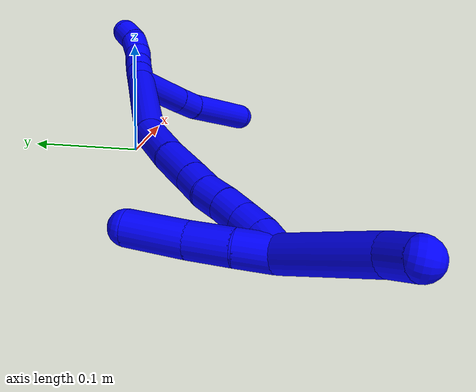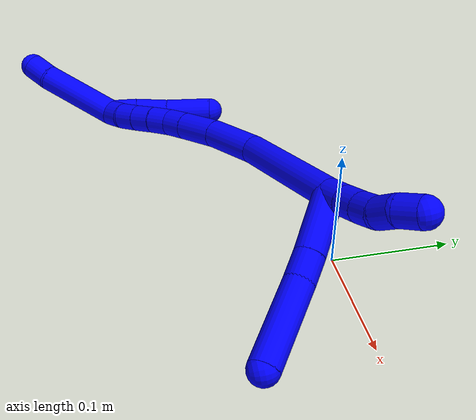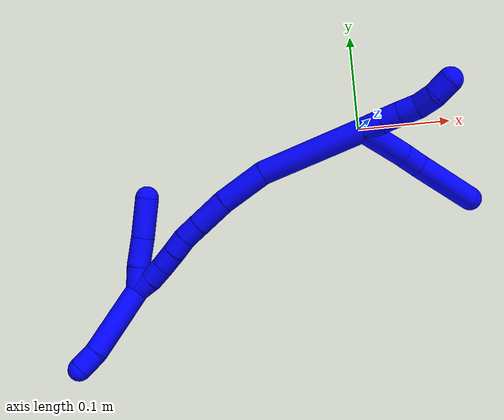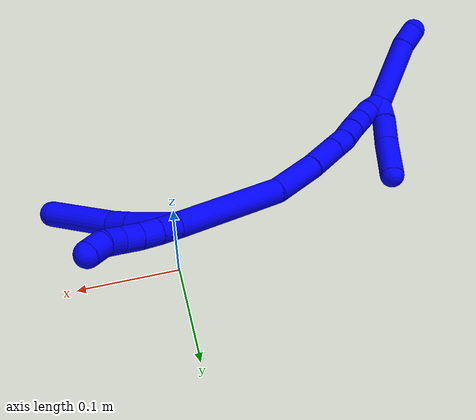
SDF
<sdf version="1.7">
 <world name="default">
  <model name="1">
   <static>0</static>
   <link name="1">
    <collision name="collision-cylinder-e_1_2_8">
     <pose>0.018485 -0.013799 0.01391 0.781372 0.756296 0.32436</pose>
     <geometry><cylinder><radius>0.0125</radius><length>0.053873</length></cylinder></geometry>
     <surface>
      <friction><ode><mu>1.16</mu><mu2>1.16</mu2><slip1>0</slip1><slip2>0</slip2></ode></friction>
      <contact><ode><kp>1e+06</kp><kd>1</kd><max_vel>0</max_vel><min_depth>0.001</min_depth></ode></contact>
     </surface>
    </collision>
    <visual name="visual-cylinder-e_1_2_8">
     <pose>0.018485 -0.013799 0.01391 0.781372 0.756296 0.32436</pose>
     <geometry><cylinder><radius>0.0125</radius><length>0.053873</length></cylinder></geometry>
     <material><ambient>0 0 1 1</ambient></material>
    </visual>
    <collision name="collision-cylinder-e_2_8_9">
     <pose>0.044879 -0.033379 0.034361 0.723861 0.736111 0.289955</pose>
     <geometry><cylinder><radius>0.0125</radius><length>0.023559</length></cylinder></geometry>
     <surface>
      <friction><ode><mu>1.16</mu><mu2>1.16</mu2><slip1>0</slip1><slip2>0</slip2></ode></friction>
      <contact><ode><kp>1e+06</kp><kd>1</kd><max_vel>0</max_vel><min_depth>0.001</min_depth></ode></contact>
     </surface>
    </collision>
    <visual name="visual-cylinder-e_2_8_9">
     <pose>0.044879 -0.033379 0.034361 0.723861 0.736111 0.289955</pose>
     <geometry><cylinder><radius>0.0125</radius><length>0.023559</length></cylinder></geometry>
     <material><ambient>0 0 1 1</ambient></material>
    </visual>
    <collision name="collision-cylinder-e_3_9_6">
     <pose>0.079772 -0.052645 0.061064 0.589487 0.838581 0.268996</pose>
     <geometry><cylinder><radius>0.0125</radius><length>0.072567</length></cylinder></geometry>
     <surface>
      <friction><ode><mu>1.16</mu><mu2>1.16</mu2><slip1>0</slip1><slip2>0</slip2></ode></friction>
      <contact><ode><kp>1e+06</kp><kd>1</kd><max_vel>0</max_vel><min_depth>0.001</min_depth></ode></contact>
     </surface>
    </collision>
    <visual name="visual-cylinder-e_3_9_6">
     <pose>0.079772 -0.052645 0.061064 0.589487 0.838581 0.268996</pose>
     <geometry><cylinder><radius>0.0125</radius><length>0.072567</length></cylinder></geometry>
     <material><ambient>0 0 1 1</ambient></material>
    </visual>
    <collision name="collision-cylinder-e_1_2_10">
     <pose>0.009206 0.000197 -0.0039 -3.09104 1.16958 -3.06525</pose>
     <geometry><cylinder><radius>0.0125</radius><length>0.02</length></cylinder></geometry>
     <surface>
      <friction><ode><mu>1.16</mu><mu2>1.16</mu2><slip1>0</slip1><slip2>0</slip2></ode></friction>
      <contact><ode><kp>1e+06</kp><kd>1</kd><max_vel>0</max_vel><min_depth>0.001</min_depth></ode></contact>
     </surface>
    </collision>
    <visual name="visual-cylinder-e_1_2_10">
     <pose>0.009206 0.000197 -0.0039 -3.09104 1.16958 -3.06525</pose>
     <geometry><cylinder><radius>0.0125</radius><length>0.02</length></cylinder></geometry>
     <material><ambient>0 0 1 1</ambient></material>
    </visual>
    <collision name="collision-cylinder-e_2_10_11">
     <pose>0.027685 0.00101 -0.011491 -2.97646 1.18733 -2.89757</pose>
     <geometry><cylinder><radius>0.0125</radius><length>0.02</length></cylinder></geometry>
     <surface>
      <friction><ode><mu>1.16</mu><mu2>1.16</mu2><slip1>0</slip1><slip2>0</slip2></ode></friction>
      <contact><ode><kp>1e+06</kp><kd>1</kd><max_vel>0</max_vel><min_depth>0.001</min_depth></ode></contact>
     </surface>
    </collision>
    <visual name="visual-cylinder-e_2_10_11">
     <pose>0.027685 0.00101 -0.011491 -2.97646 1.18733 -2.89757</pose>
     <geometry><cylinder><radius>0.0125</radius><length>0.02</length></cylinder></geometry>
     <material><ambient>0 0 1 1</ambient></material>
    </visual>
    <collision name="collision-cylinder-e_3_11_12">
     <pose>0.046242 0.003006 -0.018635 -2.7611 1.18968 -2.587</pose>
     <geometry><cylinder><radius>0.0125</radius><length>0.02</length></cylinder></geometry>
     <surface>
      <friction><ode><mu>1.16</mu><mu2>1.16</mu2><slip1>0</slip1><slip2>0</slip2></ode></friction>
      <contact><ode><kp>1e+06</kp><kd>1</kd><max_vel>0</max_vel><min_depth>0.001</min_depth></ode></contact>
     </surface>
    </collision>
    <visual name="visual-cylinder-e_3_11_12">
     <pose>0.046242 0.003006 -0.018635 -2.7611 1.18968 -2.587</pose>
     <geometry><cylinder><radius>0.0125</radius><length>0.02</length></cylinder></geometry>
     <material><ambient>0 0 1 1</ambient></material>
    </visual>
    <collision name="collision-cylinder-e_4_12_13">
     <pose>0.063337 0.00793 -0.027228 -2.53812 0.896667 -1.99297</pose>
     <geometry><cylinder><radius>0.0125</radius><length>0.02</length></cylinder></geometry>
     <surface>
      <friction><ode><mu>1.16</mu><mu2>1.16</mu2><slip1>0</slip1><slip2>0</slip2></ode></friction>
      <contact><ode><kp>1e+06</kp><kd>1</kd><max_vel>0</max_vel><min_depth>0.001</min_depth></ode></contact>
     </surface>
    </collision>
    <visual name="visual-cylinder-e_4_12_13">
     <pose>0.063337 0.00793 -0.027228 -2.53812 0.896667 -1.99297</pose>
     <geometry><cylinder><radius>0.0125</radius><length>0.02</length></cylinder></geometry>
     <material><ambient>0 0 1 1</ambient></material>
    </visual>
    <collision name="collision-cylinder-e_5_13_5">
     <pose>0.078208 0.01241 -0.039389 -3.00883 0.783671 -2.82256</pose>
     <geometry><cylinder><radius>0.0125</radius><length>0.02</length></cylinder></geometry>
     <surface>
      <friction><ode><mu>1.16</mu><mu2>1.16</mu2><slip1>0</slip1><slip2>0</slip2></ode></friction>
      <contact><ode><kp>1e+06</kp><kd>1</kd><max_vel>0</max_vel><min_depth>0.001</min_depth></ode></contact>
     </surface>
    </collision>
    <visual name="visual-cylinder-e_5_13_5">
     <pose>0.078208 0.01241 -0.039389 -3.00883 0.783671 -2.82256</pose>
     <geometry><cylinder><radius>0.0125</radius><length>0.02</length></cylinder></geometry>
     <material><ambient>0 0 1 1</ambient></material>
    </visual>
    <collision name="collision-cylinder-e_1_2_14">
     <pose>-0.051818 0.003019 0.020473 -0.146401 -1.19083 0.099272</pose>
     <geometry><cylinder><radius>0.0125</radius><length>0.111596</length></cylinder></geometry>
     <surface>
      <friction><ode><mu>1.16</mu><mu2>1.16</mu2><slip1>0</slip1><slip2>0</slip2></ode></friction>
      <contact><ode><kp>1e+06</kp><kd>1</kd><max_vel>0</max_vel><min_depth>0.001</min_depth></ode></contact>
     </surface>
    </collision>
    <visual name="visual-cylinder-e_1_2_14">
     <pose>-0.051818 0.003019 0.020473 -0.146401 -1.19083 0.099272</pose>
     <geometry><cylinder><radius>0.0125</radius><length>0.111596</length></cylinder></geometry>
     <material><ambient>0 0 1 1</ambient></material>
    </visual>
    <collision name="collision-cylinder-e_2_14_15">
     <pose>-0.124346 0.009299 0.05522 -0.224621 -0.955402 0.116644</pose>
     <geometry><cylinder><radius>0.0125</radius><length>0.050725</length></cylinder></geometry>
     <surface>
      <friction><ode><mu>1.16</mu><mu2>1.16</mu2><slip1>0</slip1><slip2>0</slip2></ode></friction>
      <contact><ode><kp>1e+06</kp><kd>1</kd><max_vel>0</max_vel><min_depth>0.001</min_depth></ode></contact>
     </surface>
    </collision>
    <visual name="visual-cylinder-e_2_14_15">
     <pose>-0.124346 0.009299 0.05522 -0.224621 -0.955402 0.116644</pose>
     <geometry><cylinder><radius>0.0125</radius><length>0.050725</length></cylinder></geometry>
     <material><ambient>0 0 1 1</ambient></material>
    </visual>
    <collision name="collision-cylinder-e_3_15_16">
     <pose>-0.158835 0.014181 0.081471 -0.134545 -0.85074 0.061026</pose>
     <geometry><cylinder><radius>0.0125</radius><length>0.036657</length></cylinder></geometry>
     <surface>
      <friction><ode><mu>1.16</mu><mu2>1.16</mu2><slip1>0</slip1><slip2>0</slip2></ode></friction>
      <contact><ode><kp>1e+06</kp><kd>1</kd><max_vel>0</max_vel><min_depth>0.001</min_depth></ode></contact>
     </surface>
    </collision>
    <visual name="visual-cylinder-e_3_15_16">
     <pose>-0.158835 0.014181 0.081471 -0.134545 -0.85074 0.061026</pose>
     <geometry><cylinder><radius>0.0125</radius><length>0.036657</length></cylinder></geometry>
     <material><ambient>0 0 1 1</ambient></material>
    </visual>
    <collision name="collision-cylinder-e_4_16_17">
     <pose>-0.18044 0.016496 0.100208 -0.102167 -0.855771 0.046627</pose>
     <geometry><cylinder><radius>0.0125</radius><length>0.020729</length></cylinder></geometry>
     <surface>
      <friction><ode><mu>1.16</mu><mu2>1.16</mu2><slip1>0</slip1><slip2>0</slip2></ode></friction>
      <contact><ode><kp>1e+06</kp><kd>1</kd><max_vel>0</max_vel><min_depth>0.001</min_depth></ode></contact>
     </surface>
    </collision>
    <visual name="visual-cylinder-e_4_16_17">
     <pose>-0.18044 0.016496 0.100208 -0.102167 -0.855771 0.046627</pose>
     <geometry><cylinder><radius>0.0125</radius><length>0.020729</length></cylinder></geometry>
     <material><ambient>0 0 1 1</ambient></material>
    </visual>
    <collision name="collision-cylinder-e_5_17_18">
     <pose>-0.194641 0.018095 0.114738 -0.116131 -0.683827 0.041371</pose>
     <geometry><cylinder><radius>0.0125</radius><length>0.020183</length></cylinder></geometry>
     <surface>
      <friction><ode><mu>1.16</mu><mu2>1.16</mu2><slip1>0</slip1><slip2>0</slip2></ode></friction>
      <contact><ode><kp>1e+06</kp><kd>1</kd><max_vel>0</max_vel><min_depth>0.001</min_depth></ode></contact>
     </surface>
    </collision>
    <visual name="visual-cylinder-e_5_17_18">
     <pose>-0.194641 0.018095 0.114738 -0.116131 -0.683827 0.041371</pose>
     <geometry><cylinder><radius>0.0125</radius><length>0.020183</length></cylinder></geometry>
     <material><ambient>0 0 1 1</ambient></material>
    </visual>
    <collision name="collision-cylinder-e_6_18_19">
     <pose>-0.207637 0.019317 0.129998 -0.042074 -0.723394 0.01592</pose>
     <geometry><cylinder><radius>0.0125</radius><length>0.020004</length></cylinder></geometry>
     <surface>
      <friction><ode><mu>1.16</mu><mu2>1.16</mu2><slip1>0</slip1><slip2>0</slip2></ode></friction>
      <contact><ode><kp>1e+06</kp><kd>1</kd><max_vel>0</max_vel><min_depth>0.001</min_depth></ode></contact>
     </surface>
    </collision>
    <visual name="visual-cylinder-e_6_18_19">
     <pose>-0.207637 0.019317 0.129998 -0.042074 -0.723394 0.01592</pose>
     <geometry><cylinder><radius>0.0125</radius><length>0.020004</length></cylinder></geometry>
     <material><ambient>0 0 1 1</ambient></material>
    </visual>
    <collision name="collision-cylinder-e_7_19_20">
     <pose>-0.221105 0.020081 0.144764 -0.061649 -0.754105 0.02442</pose>
     <geometry><cylinder><radius>0.0125</radius><length>0.020002</length></cylinder></geometry>
     <surface>
      <friction><ode><mu>1.16</mu><mu2>1.16</mu2><slip1>0</slip1><slip2>0</slip2></ode></friction>
      <contact><ode><kp>1e+06</kp><kd>1</kd><max_vel>0</max_vel><min_depth>0.001</min_depth></ode></contact>
     </surface>
    </collision>
    <visual name="visual-cylinder-e_7_19_20">
     <pose>-0.221105 0.020081 0.144764 -0.061649 -0.754105 0.02442</pose>
     <geometry><cylinder><radius>0.0125</radius><length>0.020002</length></cylinder></geometry>
     <material><ambient>0 0 1 1</ambient></material>
    </visual>
    <collision name="collision-cylinder-e_8_20_1">
     <pose>-0.23607 0.020949 0.157953 -0.070723 -0.940082 0.03594</pose>
     <geometry><cylinder><radius>0.0125</radius><length>0.020104</length></cylinder></geometry>
     <surface>
      <friction><ode><mu>1.16</mu><mu2>1.16</mu2><slip1>0</slip1><slip2>0</slip2></ode></friction>
      <contact><ode><kp>1e+06</kp><kd>1</kd><max_vel>0</max_vel><min_depth>0.001</min_depth></ode></contact>
     </surface>
    </collision>
    <visual name="visual-cylinder-e_8_20_1">
     <pose>-0.23607 0.020949 0.157953 -0.070723 -0.940082 0.03594</pose>
     <geometry><cylinder><radius>0.0125</radius><length>0.020104</length></cylinder></geometry>
     <material><ambient>0 0 1 1</ambient></material>
    </visual>
    <collision name="collision-cylinder-e_1_1_21">
     <pose>-0.243604 0.019496 0.1511 2.99598 0.045255 0.601758</pose>
     <geometry><cylinder><radius>0.0125</radius><length>0.025832</length></cylinder></geometry>
     <surface>
      <friction><ode><mu>1.16</mu><mu2>1.16</mu2><slip1>0</slip1><slip2>0</slip2></ode></friction>
      <contact><ode><kp>1e+06</kp><kd>1</kd><max_vel>0</max_vel><min_depth>0.001</min_depth></ode></contact>
     </surface>
    </collision>
    <visual name="visual-cylinder-e_1_1_21">
     <pose>-0.243604 0.019496 0.1511 2.99598 0.045255 0.601758</pose>
     <geometry><cylinder><radius>0.0125</radius><length>0.025832</length></cylinder></geometry>
     <material><ambient>0 0 1 1</ambient></material>
    </visual>
    <collision name="collision-cylinder-e_2_21_22">
     <pose>-0.240709 0.014442 0.123352 2.93229 0.1497 1.24008</pose>
     <geometry><cylinder><radius>0.0125</radius><length>0.030977</length></cylinder></geometry>
     <surface>
      <friction><ode><mu>1.16</mu><mu2>1.16</mu2><slip1>0</slip1><slip2>0</slip2></ode></friction>
      <contact><ode><kp>1e+06</kp><kd>1</kd><max_vel>0</max_vel><min_depth>0.001</min_depth></ode></contact>
     </surface>
    </collision>
    <visual name="visual-cylinder-e_2_21_22">
     <pose>-0.240709 0.014442 0.123352 2.93229 0.1497 1.24008</pose>
     <geometry><cylinder><radius>0.0125</radius><length>0.030977</length></cylinder></geometry>
     <material><ambient>0 0 1 1</ambient></material>
    </visual>
    <collision name="collision-cylinder-e_3_22_4">
     <pose>-0.235695 0.008159 0.087171 2.99634 0.125566 1.42521</pose>
     <geometry><cylinder><radius>0.0125</radius><length>0.043191</length></cylinder></geometry>
     <surface>
      <friction><ode><mu>1.16</mu><mu2>1.16</mu2><slip1>0</slip1><slip2>0</slip2></ode></friction>
      <contact><ode><kp>1e+06</kp><kd>1</kd><max_vel>0</max_vel><min_depth>0.001</min_depth></ode></contact>
     </surface>
    </collision>
    <visual name="visual-cylinder-e_3_22_4">
     <pose>-0.235695 0.008159 0.087171 2.99634 0.125566 1.42521</pose>
     <geometry><cylinder><radius>0.0125</radius><length>0.043191</length></cylinder></geometry>
     <material><ambient>0 0 1 1</ambient></material>
    </visual>
    <collision name="collision-cylinder-e_1_1_23">
     <pose>-0.26126 0.041556 0.192076 -0.621126 -0.457339 0.149118</pose>
     <geometry><cylinder><radius>0.0125</radius><length>0.077325</length></cylinder></geometry>
     <surface>
      <friction><ode><mu>1.16</mu><mu2>1.16</mu2><slip1>0</slip1><slip2>0</slip2></ode></friction>
      <contact><ode><kp>1e+06</kp><kd>1</kd><max_vel>0</max_vel><min_depth>0.001</min_depth></ode></contact>
     </surface>
    </collision>
    <visual name="visual-cylinder-e_1_1_23">
     <pose>-0.26126 0.041556 0.192076 -0.621126 -0.457339 0.149118</pose>
     <geometry><cylinder><radius>0.0125</radius><length>0.077325</length></cylinder></geometry>
     <material><ambient>0 0 1 1</ambient></material>
    </visual>
    <collision name="collision-cylinder-e_2_23_3">
     <pose>-0.285119 0.067502 0.227308 -0.686869 -0.641793 0.236615</pose>
     <geometry><cylinder><radius>0.0125</radius><length>0.022675</length></cylinder></geometry>
     <surface>
      <friction><ode><mu>1.16</mu><mu2>1.16</mu2><slip1>0</slip1><slip2>0</slip2></ode></friction>
      <contact><ode><kp>1e+06</kp><kd>1</kd><max_vel>0</max_vel><min_depth>0.001</min_depth></ode></contact>
     </surface>
    </collision>
    <visual name="visual-cylinder-e_2_23_3">
     <pose>-0.285119 0.067502 0.227308 -0.686869 -0.641793 0.236615</pose>
     <geometry><cylinder><radius>0.0125</radius><length>0.022675</length></cylinder></geometry>
     <material><ambient>0 0 1 1</ambient></material>
    </visual>
    <collision name="collision-sphere-3">
     <pose>-0.291906 0.073261 0.23433 0 -0 0</pose>
     <geometry><sphere><radius>0.0125</radius></sphere></geometry>
     <surface>
      <friction><ode><mu>1.16</mu><mu2>1.16</mu2><slip1>0</slip1><slip2>0</slip2></ode></friction>
      <contact><ode><kp>1e+06</kp><kd>1</kd><max_vel>0</max_vel><min_depth>0.001</min_depth></ode></contact>
     </surface>
    </collision>
    <visual name="visual-sphere-3">
     <pose>-0.291906 0.073261 0.23433 0 -0 0</pose>
     <geometry><sphere><radius>0.0125</radius></sphere></geometry>
     <material><ambient>0 0 1 1</ambient></material>
    </visual>
    <collision name="collision-sphere-23">
     <pose>-0.278332 0.061743 0.220286 0 -0 0</pose>
     <geometry><sphere><radius>0.0125</radius></sphere></geometry>
     <surface>
      <friction><ode><mu>1.16</mu><mu2>1.16</mu2><slip1>0</slip1><slip2>0</slip2></ode></friction>
      <contact><ode><kp>1e+06</kp><kd>1</kd><max_vel>0</max_vel><min_depth>0.001</min_depth></ode></contact>
     </surface>
    </collision>
    <visual name="visual-sphere-23">
     <pose>-0.278332 0.061743 0.220286 0 -0 0</pose>
     <geometry><sphere><radius>0.0125</radius></sphere></geometry>
     <material><ambient>0 0 1 1</ambient></material>
    </visual>
    <collision name="collision-sphere-4">
     <pose>-0.23299 0.005057 0.065972 0 -0 0</pose>
     <geometry><sphere><radius>0.0125</radius></sphere></geometry>
     <surface>
      <friction><ode><mu>1.16</mu><mu2>1.16</mu2><slip1>0</slip1><slip2>0</slip2></ode></friction>
      <contact><ode><kp>1e+06</kp><kd>1</kd><max_vel>0</max_vel><min_depth>0.001</min_depth></ode></contact>
     </surface>
    </collision>
    <visual name="visual-sphere-4">
     <pose>-0.23299 0.005057 0.065972 0 -0 0</pose>
     <geometry><sphere><radius>0.0125</radius></sphere></geometry>
     <material><ambient>0 0 1 1</ambient></material>
    </visual>
    <collision name="collision-sphere-22">
     <pose>-0.238399 0.01126 0.108371 0 -0 0</pose>
     <geometry><sphere><radius>0.0125</radius></sphere></geometry>
     <surface>
      <friction><ode><mu>1.16</mu><mu2>1.16</mu2><slip1>0</slip1><slip2>0</slip2></ode></friction>
      <contact><ode><kp>1e+06</kp><kd>1</kd><max_vel>0</max_vel><min_depth>0.001</min_depth></ode></contact>
     </surface>
    </collision>
    <visual name="visual-sphere-22">
     <pose>-0.238399 0.01126 0.108371 0 -0 0</pose>
     <geometry><sphere><radius>0.0125</radius></sphere></geometry>
     <material><ambient>0 0 1 1</ambient></material>
    </visual>
    <collision name="collision-sphere-21">
     <pose>-0.243019 0.017624 0.138333 0 -0 0</pose>
     <geometry><sphere><radius>0.0125</radius></sphere></geometry>
     <surface>
      <friction><ode><mu>1.16</mu><mu2>1.16</mu2><slip1>0</slip1><slip2>0</slip2></ode></friction>
      <contact><ode><kp>1e+06</kp><kd>1</kd><max_vel>0</max_vel><min_depth>0.001</min_depth></ode></contact>
     </surface>
    </collision>
    <visual name="visual-sphere-21">
     <pose>-0.243019 0.017624 0.138333 0 -0 0</pose>
     <geometry><sphere><radius>0.0125</radius></sphere></geometry>
     <material><ambient>0 0 1 1</ambient></material>
    </visual>
    <collision name="collision-sphere-1">
     <pose>-0.244188 0.021368 0.163866 0 -0 0</pose>
     <geometry><sphere><radius>0.0125</radius></sphere></geometry>
     <surface>
      <friction><ode><mu>1.16</mu><mu2>1.16</mu2><slip1>0</slip1><slip2>0</slip2></ode></friction>
      <contact><ode><kp>1e+06</kp><kd>1</kd><max_vel>0</max_vel><min_depth>0.001</min_depth></ode></contact>
     </surface>
    </collision>
    <visual name="visual-sphere-1">
     <pose>-0.244188 0.021368 0.163866 0 -0 0</pose>
     <geometry><sphere><radius>0.0125</radius></sphere></geometry>
     <material><ambient>0 0 1 1</ambient></material>
    </visual>
    <collision name="collision-sphere-11">
     <pose>0.036959 0.001625 -0.015182 0 -0 0</pose>
     <geometry><sphere><radius>0.0125</radius></sphere></geometry>
     <surface>
      <friction><ode><mu>1.16</mu><mu2>1.16</mu2><slip1>0</slip1><slip2>0</slip2></ode></friction>
      <contact><ode><kp>1e+06</kp><kd>1</kd><max_vel>0</max_vel><min_depth>0.001</min_depth></ode></contact>
     </surface>
    </collision>
    <visual name="visual-sphere-11">
     <pose>0.036959 0.001625 -0.015182 0 -0 0</pose>
     <geometry><sphere><radius>0.0125</radius></sphere></geometry>
     <material><ambient>0 0 1 1</ambient></material>
    </visual>
    <collision name="collision-sphere-10">
     <pose>0.018412 0.000395 -0.007801 0 -0 0</pose>
     <geometry><sphere><radius>0.0125</radius></sphere></geometry>
     <surface>
      <friction><ode><mu>1.16</mu><mu2>1.16</mu2><slip1>0</slip1><slip2>0</slip2></ode></friction>
      <contact><ode><kp>1e+06</kp><kd>1</kd><max_vel>0</max_vel><min_depth>0.001</min_depth></ode></contact>
     </surface>
    </collision>
    <visual name="visual-sphere-10">
     <pose>0.018412 0.000395 -0.007801 0 -0 0</pose>
     <geometry><sphere><radius>0.0125</radius></sphere></geometry>
     <material><ambient>0 0 1 1</ambient></material>
    </visual>
    <collision name="collision-sphere-6">
     <pose>0.106756 -0.06613 0.081227 0 -0 0</pose>
     <geometry><sphere><radius>0.0125</radius></sphere></geometry>
     <surface>
      <friction><ode><mu>1.16</mu><mu2>1.16</mu2><slip1>0</slip1><slip2>0</slip2></ode></friction>
      <contact><ode><kp>1e+06</kp><kd>1</kd><max_vel>0</max_vel><min_depth>0.001</min_depth></ode></contact>
     </surface>
    </collision>
    <visual name="visual-sphere-6">
     <pose>0.106756 -0.06613 0.081227 0 -0 0</pose>
     <geometry><sphere><radius>0.0125</radius></sphere></geometry>
     <material><ambient>0 0 1 1</ambient></material>
    </visual>
    <collision name="collision-sphere-9">
     <pose>0.052788 -0.03916 0.040902 0 -0 0</pose>
     <geometry><sphere><radius>0.0125</radius></sphere></geometry>
     <surface>
      <friction><ode><mu>1.16</mu><mu2>1.16</mu2><slip1>0</slip1><slip2>0</slip2></ode></friction>
      <contact><ode><kp>1e+06</kp><kd>1</kd><max_vel>0</max_vel><min_depth>0.001</min_depth></ode></contact>
     </surface>
    </collision>
    <visual name="visual-sphere-9">
     <pose>0.052788 -0.03916 0.040902 0 -0 0</pose>
     <geometry><sphere><radius>0.0125</radius></sphere></geometry>
     <material><ambient>0 0 1 1</ambient></material>
    </visual>
    <collision name="collision-sphere-2">
     <geometry><sphere><radius>0.0125</radius></sphere></geometry>
     <surface>
      <friction><ode><mu>1.16</mu><mu2>1.16</mu2><slip1>0</slip1><slip2>0</slip2></ode></friction>
      <contact><ode><kp>1e+06</kp><kd>1</kd><max_vel>0</max_vel><min_depth>0.001</min_depth></ode></contact>
     </surface>
    </collision>
    <visual name="visual-sphere-2">
     <geometry><sphere><radius>0.0125</radius></sphere></geometry>
     <material><ambient>0 0 1 1</ambient></material>
    </visual>
    <collision name="collision-sphere-19">
     <pose>-0.214258 0.019632 0.137488 0 -0 0</pose>
     <geometry><sphere><radius>0.0125</radius></sphere></geometry>
     <surface>
      <friction><ode><mu>1.16</mu><mu2>1.16</mu2><slip1>0</slip1><slip2>0</slip2></ode></friction>
      <contact><ode><kp>1e+06</kp><kd>1</kd><max_vel>0</max_vel><min_depth>0.001</min_depth></ode></contact>
     </surface>
    </collision>
    <visual name="visual-sphere-19">
     <pose>-0.214258 0.019632 0.137488 0 -0 0</pose>
     <geometry><sphere><radius>0.0125</radius></sphere></geometry>
     <material><ambient>0 0 1 1</ambient></material>
    </visual>
    <collision name="collision-sphere-8">
     <pose>0.03697 -0.027597 0.02782 0 -0 0</pose>
     <geometry><sphere><radius>0.0125</radius></sphere></geometry>
     <surface>
      <friction><ode><mu>1.16</mu><mu2>1.16</mu2><slip1>0</slip1><slip2>0</slip2></ode></friction>
      <contact><ode><kp>1e+06</kp><kd>1</kd><max_vel>0</max_vel><min_depth>0.001</min_depth></ode></contact>
     </surface>
    </collision>
    <visual name="visual-sphere-8">
     <pose>0.03697 -0.027597 0.02782 0 -0 0</pose>
     <geometry><sphere><radius>0.0125</radius></sphere></geometry>
     <material><ambient>0 0 1 1</ambient></material>
    </visual>
    <collision name="collision-sphere-12">
     <pose>0.055524 0.004387 -0.022089 0 -0 0</pose>
     <geometry><sphere><radius>0.0125</radius></sphere></geometry>
     <surface>
      <friction><ode><mu>1.16</mu><mu2>1.16</mu2><slip1>0</slip1><slip2>0</slip2></ode></friction>
      <contact><ode><kp>1e+06</kp><kd>1</kd><max_vel>0</max_vel><min_depth>0.001</min_depth></ode></contact>
     </surface>
    </collision>
    <visual name="visual-sphere-12">
     <pose>0.055524 0.004387 -0.022089 0 -0 0</pose>
     <geometry><sphere><radius>0.0125</radius></sphere></geometry>
     <material><ambient>0 0 1 1</ambient></material>
    </visual>
    <collision name="collision-sphere-13">
     <pose>0.071149 0.011472 -0.032368 0 -0 0</pose>
     <geometry><sphere><radius>0.0125</radius></sphere></geometry>
     <surface>
      <friction><ode><mu>1.16</mu><mu2>1.16</mu2><slip1>0</slip1><slip2>0</slip2></ode></friction>
      <contact><ode><kp>1e+06</kp><kd>1</kd><max_vel>0</max_vel><min_depth>0.001</min_depth></ode></contact>
     </surface>
    </collision>
    <visual name="visual-sphere-13">
     <pose>0.071149 0.011472 -0.032368 0 -0 0</pose>
     <geometry><sphere><radius>0.0125</radius></sphere></geometry>
     <material><ambient>0 0 1 1</ambient></material>
    </visual>
    <collision name="collision-sphere-5">
     <pose>0.085267 0.013348 -0.04641 0 -0 0</pose>
     <geometry><sphere><radius>0.0125</radius></sphere></geometry>
     <surface>
      <friction><ode><mu>1.16</mu><mu2>1.16</mu2><slip1>0</slip1><slip2>0</slip2></ode></friction>
      <contact><ode><kp>1e+06</kp><kd>1</kd><max_vel>0</max_vel><min_depth>0.001</min_depth></ode></contact>
     </surface>
    </collision>
    <visual name="visual-sphere-5">
     <pose>0.085267 0.013348 -0.04641 0 -0 0</pose>
     <geometry><sphere><radius>0.0125</radius></sphere></geometry>
     <material><ambient>0 0 1 1</ambient></material>
    </visual>
    <collision name="collision-sphere-14">
     <pose>-0.103637 0.006038 0.040947 0 -0 0</pose>
     <geometry><sphere><radius>0.0125</radius></sphere></geometry>
     <surface>
      <friction><ode><mu>1.16</mu><mu2>1.16</mu2><slip1>0</slip1><slip2>0</slip2></ode></friction>
      <contact><ode><kp>1e+06</kp><kd>1</kd><max_vel>0</max_vel><min_depth>0.001</min_depth></ode></contact>
     </surface>
    </collision>
    <visual name="visual-sphere-14">
     <pose>-0.103637 0.006038 0.040947 0 -0 0</pose>
     <geometry><sphere><radius>0.0125</radius></sphere></geometry>
     <material><ambient>0 0 1 1</ambient></material>
    </visual>
    <collision name="collision-sphere-15">
     <pose>-0.145056 0.01256 0.069494 0 -0 0</pose>
     <geometry><sphere><radius>0.0125</radius></sphere></geometry>
     <surface>
      <friction><ode><mu>1.16</mu><mu2>1.16</mu2><slip1>0</slip1><slip2>0</slip2></ode></friction>
      <contact><ode><kp>1e+06</kp><kd>1</kd><max_vel>0</max_vel><min_depth>0.001</min_depth></ode></contact>
     </surface>
    </collision>
    <visual name="visual-sphere-15">
     <pose>-0.145056 0.01256 0.069494 0 -0 0</pose>
     <geometry><sphere><radius>0.0125</radius></sphere></geometry>
     <material><ambient>0 0 1 1</ambient></material>
    </visual>
    <collision name="collision-sphere-16">
     <pose>-0.172614 0.015803 0.093448 0 -0 0</pose>
     <geometry><sphere><radius>0.0125</radius></sphere></geometry>
     <surface>
      <friction><ode><mu>1.16</mu><mu2>1.16</mu2><slip1>0</slip1><slip2>0</slip2></ode></friction>
      <contact><ode><kp>1e+06</kp><kd>1</kd><max_vel>0</max_vel><min_depth>0.001</min_depth></ode></contact>
     </surface>
    </collision>
    <visual name="visual-sphere-16">
     <pose>-0.172614 0.015803 0.093448 0 -0 0</pose>
     <geometry><sphere><radius>0.0125</radius></sphere></geometry>
     <material><ambient>0 0 1 1</ambient></material>
    </visual>
    <collision name="collision-sphere-17">
     <pose>-0.188266 0.017189 0.106968 0 -0 0</pose>
     <geometry><sphere><radius>0.0125</radius></sphere></geometry>
     <surface>
      <friction><ode><mu>1.16</mu><mu2>1.16</mu2><slip1>0</slip1><slip2>0</slip2></ode></friction>
      <contact><ode><kp>1e+06</kp><kd>1</kd><max_vel>0</max_vel><min_depth>0.001</min_depth></ode></contact>
     </surface>
    </collision>
    <visual name="visual-sphere-17">
     <pose>-0.188266 0.017189 0.106968 0 -0 0</pose>
     <geometry><sphere><radius>0.0125</radius></sphere></geometry>
     <material><ambient>0 0 1 1</ambient></material>
    </visual>
    <collision name="collision-sphere-18">
     <pose>-0.201017 0.019002 0.122508 0 -0 0</pose>
     <geometry><sphere><radius>0.0125</radius></sphere></geometry>
     <surface>
      <friction><ode><mu>1.16</mu><mu2>1.16</mu2><slip1>0</slip1><slip2>0</slip2></ode></friction>
      <contact><ode><kp>1e+06</kp><kd>1</kd><max_vel>0</max_vel><min_depth>0.001</min_depth></ode></contact>
     </surface>
    </collision>
    <visual name="visual-sphere-18">
     <pose>-0.201017 0.019002 0.122508 0 -0 0</pose>
     <geometry><sphere><radius>0.0125</radius></sphere></geometry>
     <material><ambient>0 0 1 1</ambient></material>
    </visual>
    <collision name="collision-sphere-20">
     <pose>-0.227952 0.02053 0.15204 0 -0 0</pose>
     <geometry><sphere><radius>0.0125</radius></sphere></geometry>
     <surface>
      <friction><ode><mu>1.16</mu><mu2>1.16</mu2><slip1>0</slip1><slip2>0</slip2></ode></friction>
      <contact><ode><kp>1e+06</kp><kd>1</kd><max_vel>0</max_vel><min_depth>0.001</min_depth></ode></contact>
     </surface>
    </collision>
    <visual name="visual-sphere-20">
     <pose>-0.227952 0.02053 0.15204 0 -0 0</pose>
     <geometry><sphere><radius>0.0125</radius></sphere></geometry>
     <material><ambient>0 0 1 1</ambient></material>
    </visual>
    <inertial>
     <pose>-0.102885 0.005911 0.07548 0 -0 0</pose>
     <mass>0.75</mass>
     <inertia>
      <ixx>0.000161</ixx>
      <ixy>0</ixy>
      <ixz>0</ixz>
      <iyy>0.000264</iyy>
      <iyz>0</iyz>
      <izz>0.00011</izz>
     </inertia>
    </inertial>
   </link>
   <pose>-0.003077 -0.006742 0.06635 1.72547 -0.210217 -0.082834</pose>
  </model>
 </world>
</sdf>
